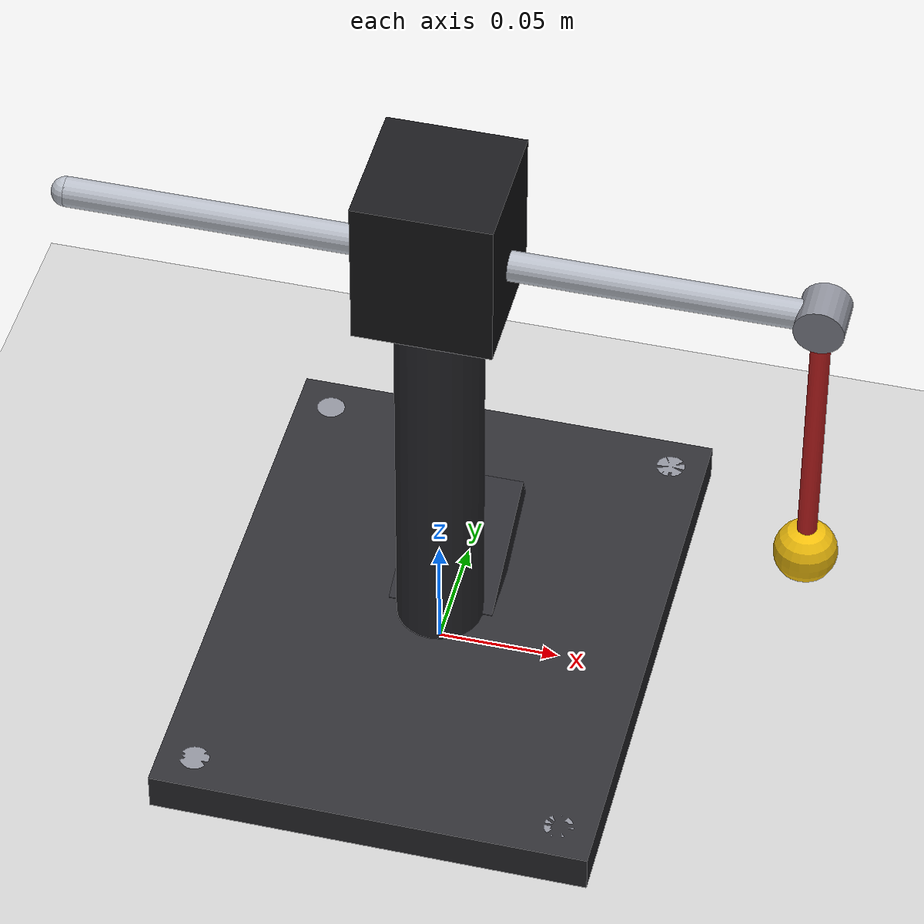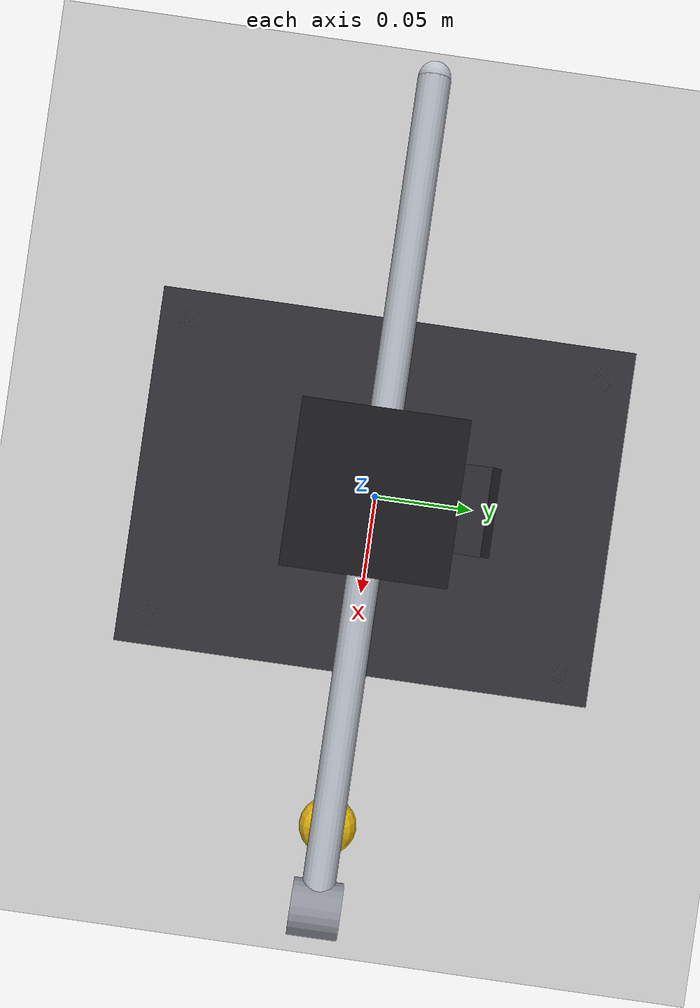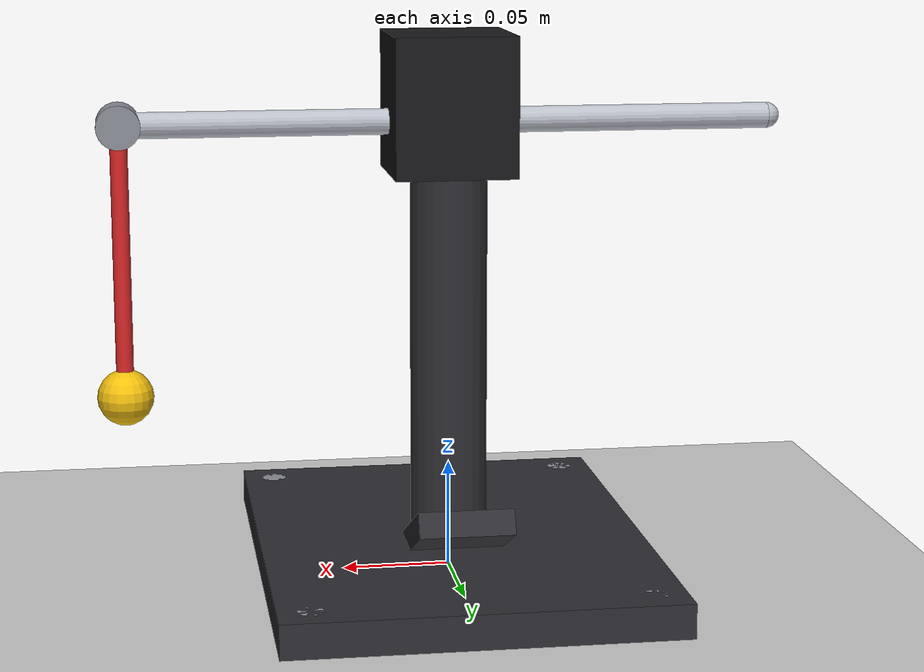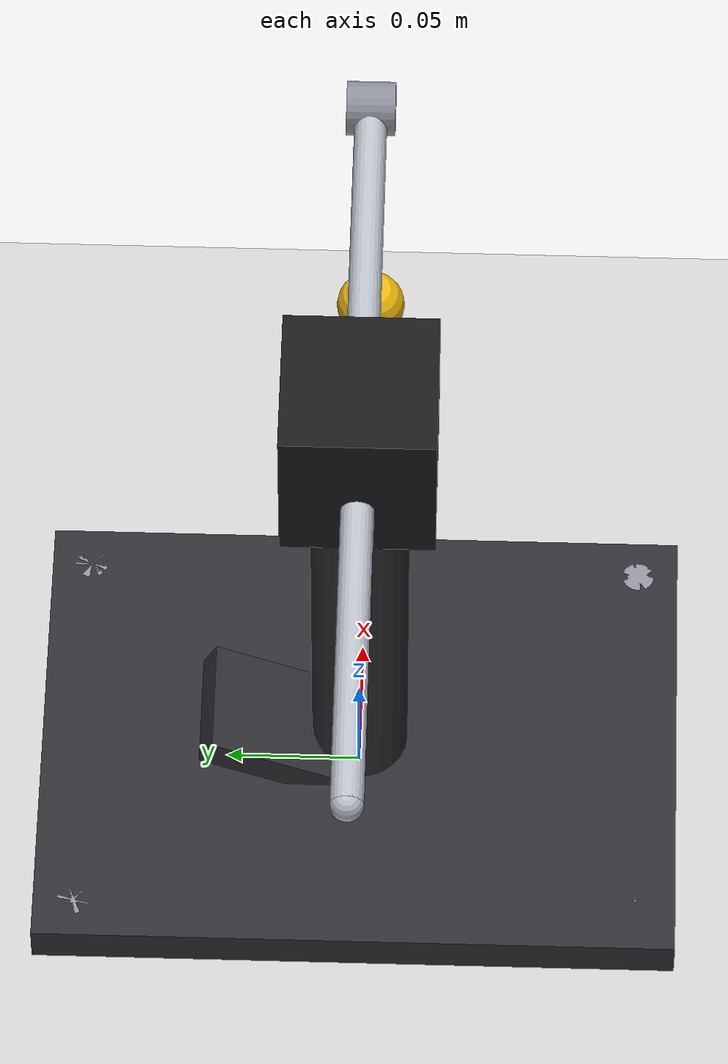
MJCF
<mujoco model="furuta">

  <compiler angle="radian"/>

  <option timestep="0.004" integrator="RK4" gravity="0 0 -9.81"/>

  <default>
    <geom contype="0" conaffinity="0"/>
  </default>

  <asset>
    <texture name="grid" type="2d" builtin="checker" rgb1="0.85 0.85 0.85" rgb2="0.75 0.75 0.75" width="300" height="300"/>
    <material name="floor_mat" texture="grid" texrepeat="4 4" reflectance="0.1"/>
    <material name="base_mat" rgba="0.18 0.18 0.20 1"/>
    <material name="motor_mat" rgba="0.10 0.10 0.11 1"/>
    <material name="arm_mat" rgba="0.72 0.74 0.78 1"/>
    <material name="collar_mat" rgba="0.55 0.56 0.60 1"/>
    <material name="pendulum_mat" rgba="0.85 0.15 0.15 1"/>
    <material name="bob_mat" rgba="0.95 0.75 0.05 1"/>
  </asset>

  <worldbody>

    <light directional="true" diffuse="0.8 0.8 0.8" specular="0.2 0.2 0.2" pos="0 0 3" dir="0 0 -1"/>

    <geom name="floor" type="plane" size="1 1 0.05" material="floor_mat"/>

    <!-- Fixed base: plate + corner feet + vertical post + motor housing.
         Shaft top (where arm_joint mounts) sits at world z=0.212. -->
    <body name="base" pos="0 0 0">
      <geom name="base_plate" type="box" size="0.09 0.12 0.008" pos="0 0 0.008" material="base_mat"/>
      <geom name="foot1" type="cylinder" size="0.006 0.008" pos=" 0.075  0.105 0.008" material="collar_mat"/>
      <geom name="foot2" type="cylinder" size="0.006 0.008" pos="-0.075  0.105 0.008" material="collar_mat"/>
      <geom name="foot3" type="cylinder" size="0.006 0.008" pos=" 0.075 -0.105 0.008" material="collar_mat"/>
      <geom name="foot4" type="cylinder" size="0.006 0.008" pos="-0.075 -0.105 0.008" material="collar_mat"/>

      <geom name="base_post" type="cylinder" size="0.018 0.086" pos="0 0 0.102" material="base_mat"/>
      <geom name="post_gusset" type="box" size="0.022 0.03 0.006" pos="0 0.03 0.024" euler="35 0 0" material="base_mat"/>

      <geom name="motor_housing" type="box" size="0.028 0.028 0.032" pos="0 0 0.22" material="motor_mat"/>
      <geom name="motor_cap" type="cylinder" size="0.014 0.006" pos="0 0 0.194" material="collar_mat"/>

      <!-- arm_joint: hinge about world Z, at the top of the shaft. -->
      <body name="arm" pos="0 0 0.212">
        <joint name="arm_joint" type="hinge" axis="0 0 1" pos="0 0 0"
               damping="0.001" frictionloss="0.001"/>

        <geom name="arm_collar" type="cylinder" size="0.012 0.010" material="collar_mat" density="2700"/>
        <geom name="arm_rod" type="cylinder" fromto="-0.15 0 0  0.15 0 0" size="0.006" material="arm_mat" density="2700"/>
        <geom name="arm_cap_neg" type="sphere" size="0.006" pos="-0.15 0 0" material="arm_mat" density="2700"/>

        <!-- pendulum_joint: hinge about the arm's local Y (tangential),
             mounted at the rod tip, radius 0.15 from arm_joint. -->
        <body name="pendulum" pos="0.15 0 0">
          <joint name="pendulum_joint" type="hinge" axis="0 1 0" pos="0 0 0"
                 damping="0.0005" frictionloss="0.0002"/>

          <geom name="pend_hub" type="cylinder" size="0.010 0.009" quat="0.7071068 0.7071068 0 0" material="collar_mat" density="2976"/>
          <geom name="pend_rod" type="cylinder" fromto="0 0 0  0 0 -0.125" size="0.004" material="pendulum_mat" density="2976"/>
          <geom name="pend_bob" type="sphere" size="0.013" pos="0 0 -0.125" material="bob_mat" density="2976"/>
        </body>
      </body>
    </body>

  </worldbody>

  <actuator>
    <motor name="motor" joint="arm_joint" ctrlrange="-1 1" gear="1"/>
  </actuator>

</mujoco>
